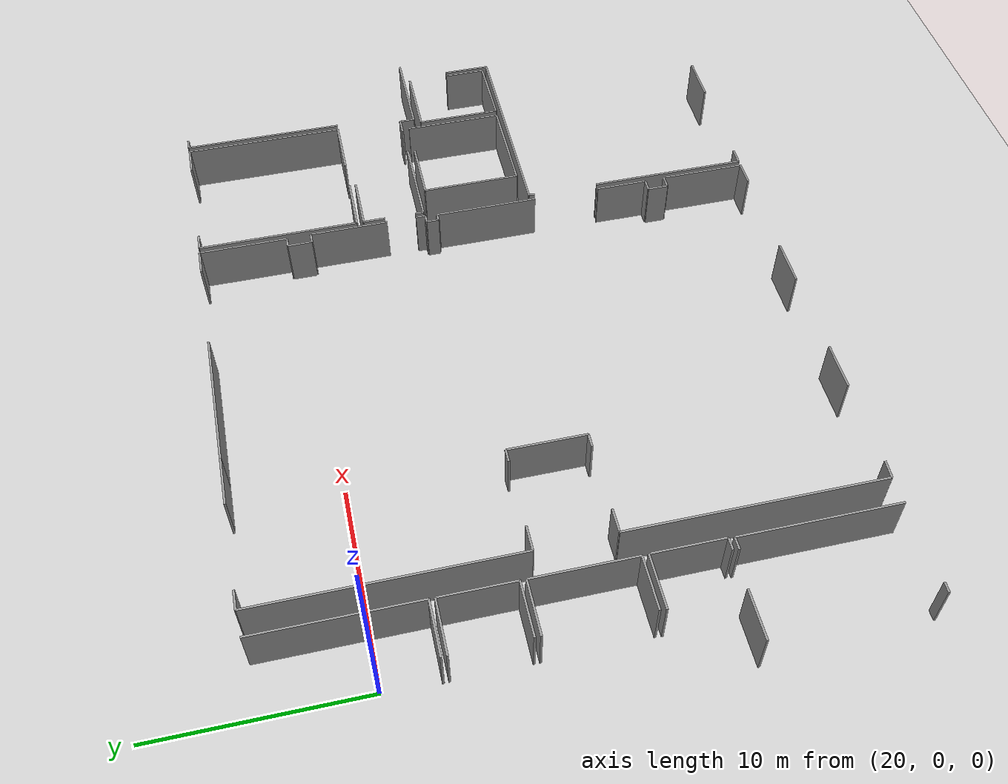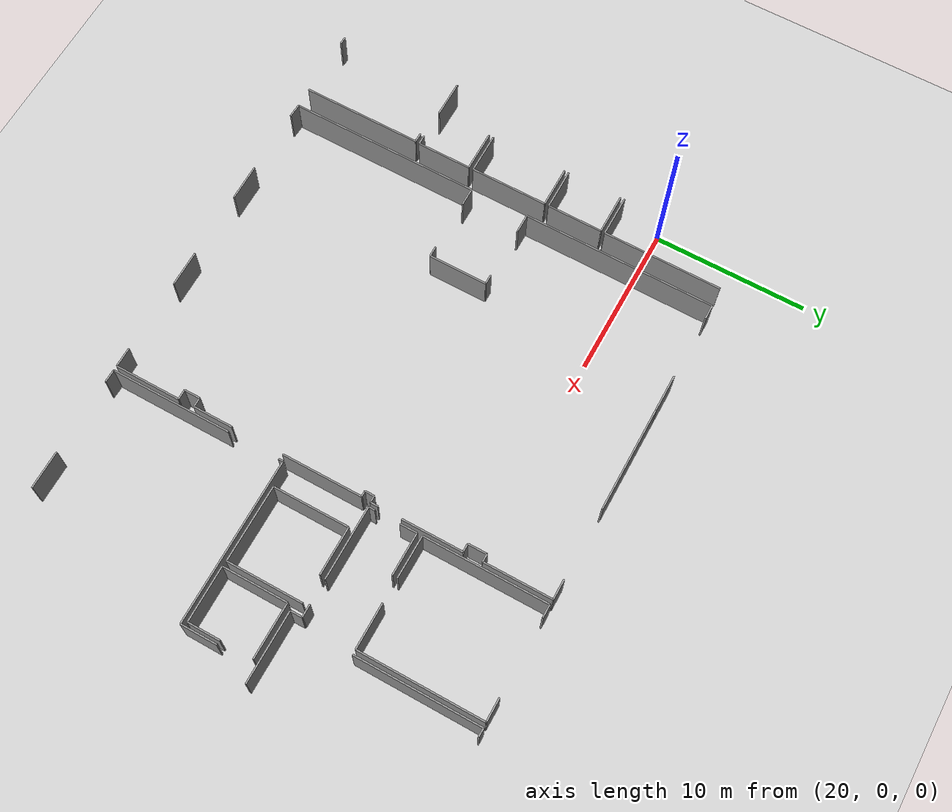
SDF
<sdf version="1.6">
 <world name="default">
  <model name="ground_plane">
   <static>1</static>
   <link name="link">
    <collision name="collision">
     <geometry><plane><normal>0 0 1</normal><size>100 100</size></plane></geometry>
     <surface><friction><ode><mu>100</mu><mu2>50</mu2></ode></friction></surface>
    </collision>
    <visual name="visual">
     <cast_shadows>0</cast_shadows>
     <geometry><plane><normal>0 0 1</normal><size>100 100</size></plane></geometry>
     <material>
      <script><uri>file://media/materials/scripts/gazebo.material</uri><name>Gazebo/Grey</name></script>
     </material>
    </visual>
   </link>
  </model>
  <model name="0510035343_A_40_1_102">
   <static>1</static>
   <link name="Wall_283">
    <collision name="Wall_283_Collision">
     <geometry><box><size>2.66590497953 0.1 2.5</size></box></geometry>
     <pose>1.33295248976 0 1.25 0 0 0</pose>
    </collision>
    <visual name="Wall_283_Visual">
     <pose>1.33295248976 0 1.25 0 0 0</pose>
     <geometry><box><size>2.66590497953 0.1 2.5</size></box></geometry>
     <material>
      <script><uri>file://media/materials/scripts/gazebo.material</uri><name>Gazebo/Grey</name></script>
      <ambient>1 1 1 1</ambient>
     </material>
    </visual>
    <pose>136.652004189 -27.2219365895 0 0 0 0.0</pose>
   </link>
   <link name="Wall_284">
    <collision name="Wall_284_Collision">
     <geometry><box><size>3.59871782665 0.1 2.5</size></box></geometry>
     <pose>1.79935891333 0 1.25 0 0 0</pose>
    </collision>
    <visual name="Wall_284_Visual">
     <pose>1.79935891333 0 1.25 0 0 0</pose>
     <geometry><box><size>3.59871782665 0.1 2.5</size></box></geometry>
     <material>
      <script><uri>file://media/materials/scripts/gazebo.material</uri><name>Gazebo/Grey</name></script>
      <ambient>1 1 1 1</ambient>
     </material>
    </visual>
    <pose>139.317909169 -27.2219365895 0 0 0 -1.57079632679</pose>
   </link>
   <link name="Wall_285">
    <collision name="Wall_285_Collision">
     <geometry><box><size>2.67479132946 0.1 2.5</size></box></geometry>
     <pose>1.33739566473 0 1.25 0 0 0</pose>
    </collision>
    <visual name="Wall_285_Visual">
     <pose>1.33739566473 0 1.25 0 0 0</pose>
     <geometry><box><size>2.67479132946 0.1 2.5</size></box></geometry>
     <material>
      <script><uri>file://media/materials/scripts/gazebo.material</uri><name>Gazebo/Grey</name></script>
      <ambient>1 1 1 1</ambient>
     </material>
    </visual>
    <pose>139.317909169 -30.8206544162 0 0 0 3.14159265359</pose>
   </link>
   <link name="Wall_289">
    <collision name="Wall_289_Collision">
     <geometry><box><size>2.6714906852 0.1 2.5</size></box></geometry>
     <pose>1.3357453426 0 1.25 0 0 0</pose>
    </collision>
    <visual name="Wall_289_Visual">
     <pose>1.3357453426 0 1.25 0 0 0</pose>
     <geometry><box><size>2.6714906852 0.1 2.5</size></box></geometry>
     <material>
      <script><uri>file://media/materials/scripts/gazebo.material</uri><name>Gazebo/Grey</name></script>
      <ambient>1 1 1 1</ambient>
     </material>
    </visual>
    <pose>136.665206766 -36.4284490146 0 0 0 0.0</pose>
   </link>
   <link name="Wall_290">
    <collision name="Wall_290_Collision">
     <geometry><box><size>3.53905233425 0.1 2.5</size></box></geometry>
     <pose>1.76952616713 0 1.25 0 0 0</pose>
    </collision>
    <visual name="Wall_290_Visual">
     <pose>1.76952616713 0 1.25 0 0 0</pose>
     <geometry><box><size>3.53905233425 0.1 2.5</size></box></geometry>
     <material>
      <script><uri>file://media/materials/scripts/gazebo.material</uri><name>Gazebo/Grey</name></script>
      <ambient>1 1 1 1</ambient>
     </material>
    </visual>
    <pose>139.336697452 -36.4284490146 0 0 0 -1.57079632679</pose>
   </link>
   <link name="Wall_291">
    <collision name="Wall_291_Collision">
     <geometry><box><size>0.618743850963 0.1 2.5</size></box></geometry>
     <pose>0.309371925482 0 1.25 0 0 0</pose>
    </collision>
    <visual name="Wall_291_Visual">
     <pose>0.309371925482 0 1.25 0 0 0</pose>
     <geometry><box><size>0.618743850963 0.1 2.5</size></box></geometry>
     <material>
      <script><uri>file://media/materials/scripts/gazebo.material</uri><name>Gazebo/Grey</name></script>
      <ambient>1 1 1 1</ambient>
     </material>
    </visual>
    <pose>139.336697452 -39.9675013488 0 0 0 3.14159265359</pose>
   </link>
   <link name="Wall_292">
    <collision name="Wall_292_Collision">
     <geometry><box><size>2.399822273 0.1 2.5</size></box></geometry>
     <pose>1.1999111365 0 1.25 0 0 0</pose>
    </collision>
    <visual name="Wall_292_Visual">
     <pose>1.1999111365 0 1.25 0 0 0</pose>
     <geometry><box><size>2.399822273 0.1 2.5</size></box></geometry>
     <material>
      <script><uri>file://media/materials/scripts/gazebo.material</uri><name>Gazebo/Grey</name></script>
      <ambient>1 1 1 1</ambient>
     </material>
    </visual>
    <pose>136.818813672 -39.9675013488 0 0 0 3.14159265359</pose>
   </link>
   <link name="Wall_339">
    <collision name="Wall_339_Collision">
     <geometry><box><size>7.76438477895 0.1 2.5</size></box></geometry>
     <pose>3.88219238948 0 1.25 0 0 0</pose>
    </collision>
    <visual name="Wall_339_Visual">
     <pose>3.88219238948 0 1.25 0 0 0</pose>
     <geometry><box><size>7.76438477895 0.1 2.5</size></box></geometry>
     <material>
      <script><uri>file://media/materials/scripts/gazebo.material</uri><name>Gazebo/Grey</name></script>
      <ambient>1 1 1 1</ambient>
     </material>
    </visual>
    <pose>139.320702022 -19.1881684598 0 0 0 -1.57079632679</pose>
   </link>
   <link name="Wall_340">
    <collision name="Wall_340_Collision">
     <geometry><box><size>2.6755530166 0.1 2.5</size></box></geometry>
     <pose>1.3377765083 0 1.25 0 0 0</pose>
    </collision>
    <visual name="Wall_340_Visual">
     <pose>1.3377765083 0 1.25 0 0 0</pose>
     <geometry><box><size>2.6755530166 0.1 2.5</size></box></geometry>
     <material>
      <script><uri>file://media/materials/scripts/gazebo.material</uri><name>Gazebo/Grey</name></script>
      <ambient>1 1 1 1</ambient>
     </material>
    </visual>
    <pose>139.320702022 -26.9525532388 0 0 0 3.14159265359</pose>
   </link>
   <link name="Wall_343">
    <collision name="Wall_343_Collision">
     <geometry><box><size>2.6714906852 0.1 2.5</size></box></geometry>
     <pose>1.3357453426 0 1.25 0 0 0</pose>
    </collision>
    <visual name="Wall_343_Visual">
     <pose>1.3357453426 0 1.25 0 0 0</pose>
     <geometry><box><size>2.6714906852 0.1 2.5</size></box></geometry>
     <material>
      <script><uri>file://media/materials/scripts/gazebo.material</uri><name>Gazebo/Grey</name></script>
      <ambient>1 1 1 1</ambient>
     </material>
    </visual>
    <pose>136.643117839 -31.1022247612 0 0 0 0.0</pose>
   </link>
   <link name="Wall_344">
    <collision name="Wall_344_Collision">
     <geometry><box><size>5.01723317147 0.1 2.5</size></box></geometry>
     <pose>2.50861658574 0 1.25 0 0 0</pose>
    </collision>
    <visual name="Wall_344_Visual">
     <pose>2.50861658574 0 1.25 0 0 0</pose>
     <geometry><box><size>5.01723317147 0.1 2.5</size></box></geometry>
     <material>
      <script><uri>file://media/materials/scripts/gazebo.material</uri><name>Gazebo/Grey</name></script>
      <ambient>1 1 1 1</ambient>
     </material>
    </visual>
    <pose>139.314608525 -31.1022247612 0 0 0 -1.57079632679</pose>
   </link>
   <link name="Wall_345">
    <collision name="Wall_345_Collision">
     <geometry><box><size>2.62731283125 0.1 2.5</size></box></geometry>
     <pose>1.31365641563 0 1.25 0 0 0</pose>
    </collision>
    <visual name="Wall_345_Visual">
     <pose>1.31365641563 0 1.25 0 0 0</pose>
     <geometry><box><size>2.62731283125 0.1 2.5</size></box></geometry>
     <material>
      <script><uri>file://media/materials/scripts/gazebo.material</uri><name>Gazebo/Grey</name></script>
      <ambient>1 1 1 1</ambient>
     </material>
    </visual>
    <pose>139.314608525 -36.1194579327 0 0 0 3.14159265359</pose>
   </link>
   <link name="Wall_349">
    <collision name="Wall_349_Collision">
     <geometry><box><size>0.609857501031 0.1 2.5</size></box></geometry>
     <pose>0.304928750516 0 1.25 0 0 0</pose>
    </collision>
    <visual name="Wall_349_Visual">
     <pose>0.304928750516 0 1.25 0 0 0</pose>
     <geometry><box><size>0.609857501031 0.1 2.5</size></box></geometry>
     <material>
      <script><uri>file://media/materials/scripts/gazebo.material</uri><name>Gazebo/Grey</name></script>
      <ambient>1 1 1 1</ambient>
     </material>
    </visual>
    <pose>138.688755594 -40.2434859881 0 0 0 0.0</pose>
   </link>
   <link name="Wall_350">
    <collision name="Wall_350_Collision">
     <geometry><box><size>7.82430416706 0.1 2.5</size></box></geometry>
     <pose>3.91215208353 0 1.25 0 0 0</pose>
    </collision>
    <visual name="Wall_350_Visual">
     <pose>3.91215208353 0 1.25 0 0 0</pose>
     <geometry><box><size>7.82430416706 0.1 2.5</size></box></geometry>
     <material>
      <script><uri>file://media/materials/scripts/gazebo.material</uri><name>Gazebo/Grey</name></script>
      <ambient>1 1 1 1</ambient>
     </material>
    </visual>
    <pose>139.298613095 -40.2434859881 0 0 0 -1.57079632679</pose>
   </link>
   <link name="Wall_351">
    <collision name="Wall_351_Collision">
     <geometry><box><size>0.493699674031 0.1 2.5</size></box></geometry>
     <pose>0.246849837016 0 1.25 0 0 0</pose>
    </collision>
    <visual name="Wall_351_Visual">
     <pose>0.246849837016 0 1.25 0 0 0</pose>
     <geometry><box><size>0.493699674031 0.1 2.5</size></box></geometry>
     <material>
      <script><uri>file://media/materials/scripts/gazebo.material</uri><name>Gazebo/Grey</name></script>
      <ambient>1 1 1 1</ambient>
     </material>
    </visual>
    <pose>135.291884858 -48.0677901552 0 0 0 3.11896277253</pose>
   </link>
   <link name="Wall_382">
    <collision name="Wall_382_Collision">
     <geometry><box><size>12.5038560411 0.1 2.5</size></box></geometry>
     <pose>6.25192802057 0 1.25 0 0 0</pose>
    </collision>
    <visual name="Wall_382_Visual">
     <pose>6.25192802057 0 1.25 0 0 0</pose>
     <geometry><box><size>12.5038560411 0.1 2.5</size></box></geometry>
     <material>
      <script><uri>file://media/materials/scripts/gazebo.material</uri><name>Gazebo/Grey</name></script>
      <ambient>1 1 1 1</ambient>
     </material>
    </visual>
    <pose>140.632581167 -48.0134564728 0 0 0 1.57079632679</pose>
   </link>
   <link name="Wall_383">
    <collision name="Wall_383_Collision">
     <geometry><box><size>1.18518518519 0.1 2.5</size></box></geometry>
     <pose>0.592592592593 0 1.25 0 0 0</pose>
    </collision>
    <visual name="Wall_383_Visual">
     <pose>0.592592592593 0 1.25 0 0 0</pose>
     <geometry><box><size>1.18518518519 0.1 2.5</size></box></geometry>
     <material>
      <script><uri>file://media/materials/scripts/gazebo.material</uri><name>Gazebo/Grey</name></script>
      <ambient>1 1 1 1</ambient>
     </material>
    </visual>
    <pose>140.632581167 -35.5096004316 0 0 0 0.0</pose>
   </link>
   <link name="Wall_384">
    <collision name="Wall_384_Collision">
     <geometry><box><size>0.684502840458 0.1 2.5</size></box></geometry>
     <pose>0.342251420229 0 1.25 0 0 0</pose>
    </collision>
    <visual name="Wall_384_Visual">
     <pose>0.342251420229 0 1.25 0 0 0</pose>
     <geometry><box><size>0.684502840458 0.1 2.5</size></box></geometry>
     <material>
      <script><uri>file://media/materials/scripts/gazebo.material</uri><name>Gazebo/Grey</name></script>
      <ambient>1 1 1 1</ambient>
     </material>
    </visual>
    <pose>145.190009204 -35.5096004316 0 0 0 0.0</pose>
   </link>
   <link name="Wall_385">
    <collision name="Wall_385_Collision">
     <geometry><box><size>3.83966485766 0.1 2.5</size></box></geometry>
     <pose>1.91983242883 0 1.25 0 0 0</pose>
    </collision>
    <visual name="Wall_385_Visual">
     <pose>1.91983242883 0 1.25 0 0 0</pose>
     <geometry><box><size>3.83966485766 0.1 2.5</size></box></geometry>
     <material>
      <script><uri>file://media/materials/scripts/gazebo.material</uri><name>Gazebo/Grey</name></script>
      <ambient>1 1 1 1</ambient>
     </material>
    </visual>
    <pose>145.874512044 -35.5096004316 0 0 0 1.57079632679</pose>
   </link>
   <link name="Wall_386">
    <collision name="Wall_386_Collision">
     <geometry><box><size>0.634485385128 0.1 2.5</size></box></geometry>
     <pose>0.317242692564 0 1.25 0 0 0</pose>
    </collision>
    <visual name="Wall_386_Visual">
     <pose>0.317242692564 0 1.25 0 0 0</pose>
     <geometry><box><size>0.634485385128 0.1 2.5</size></box></geometry>
     <material>
      <script><uri>file://media/materials/scripts/gazebo.material</uri><name>Gazebo/Grey</name></script>
      <ambient>1 1 1 1</ambient>
     </material>
    </visual>
    <pose>145.874512044 -31.669935574 0 0 0 3.14159265359</pose>
   </link>
   <link name="Wall_387">
    <collision name="Wall_387_Collision">
     <geometry><box><size>1.25195975753 0.1 2.5</size></box></geometry>
     <pose>0.625979878765 0 1.25 0 0 0</pose>
    </collision>
    <visual name="Wall_387_Visual">
     <pose>0.625979878765 0 1.25 0 0 0</pose>
     <geometry><box><size>1.25195975753 0.1 2.5</size></box></geometry>
     <material>
      <script><uri>file://media/materials/scripts/gazebo.material</uri><name>Gazebo/Grey</name></script>
      <ambient>1 1 1 1</ambient>
     </material>
    </visual>
    <pose>141.834523469 -31.669935574 0 0 0 3.14159265359</pose>
   </link>
   <link name="Wall_388">
    <collision name="Wall_388_Collision">
     <geometry><box><size>12.5538734965 0.1 2.5</size></box></geometry>
     <pose>6.27693674823 0 1.25 0 0 0</pose>
    </collision>
    <visual name="Wall_388_Visual">
     <pose>6.27693674823 0 1.25 0 0 0</pose>
     <geometry><box><size>12.5538734965 0.1 2.5</size></box></geometry>
     <material>
      <script><uri>file://media/materials/scripts/gazebo.material</uri><name>Gazebo/Grey</name></script>
      <ambient>1 1 1 1</ambient>
     </material>
    </visual>
    <pose>140.582563712 -31.669935574 0 0 0 1.57079632679</pose>
   </link>
   <link name="Wall_389">
    <collision name="Wall_389_Collision">
     <geometry><box><size>0.951601129836 0.1 2.5</size></box></geometry>
     <pose>0.475800564918 0 1.25 0 0 0</pose>
    </collision>
    <visual name="Wall_389_Visual">
     <pose>0.475800564918 0 1.25 0 0 0</pose>
     <geometry><box><size>0.951601129836 0.1 2.5</size></box></geometry>
     <material>
      <script><uri>file://media/materials/scripts/gazebo.material</uri><name>Gazebo/Grey</name></script>
      <ambient>1 1 1 1</ambient>
     </material>
    </visual>
    <pose>140.582563712 -19.1160620775 0 0 0 0.0</pose>
   </link>
   <link name="Wall_390">
    <collision name="Wall_390_Collision">
     <geometry><box><size>2.45415595544 0.1 2.5</size></box></geometry>
     <pose>1.22707797772 0 1.25 0 0 0</pose>
    </collision>
    <visual name="Wall_390_Visual">
     <pose>1.22707797772 0 1.25 0 0 0</pose>
     <geometry><box><size>2.45415595544 0.1 2.5</size></box></geometry>
     <material>
      <script><uri>file://media/materials/scripts/gazebo.material</uri><name>Gazebo/Grey</name></script>
      <ambient>1 1 1 1</ambient>
     </material>
    </visual>
    <pose>145.807737472 -19.1160620775 0 0 0 0.0</pose>
   </link>
   <link name="Wall_391">
    <collision name="Wall_391_Collision">
     <geometry><box><size>6.89123742423 0.1 2.5</size></box></geometry>
     <pose>3.44561871211 0 1.25 0 0 0</pose>
    </collision>
    <visual name="Wall_391_Visual">
     <pose>3.44561871211 0 1.25 0 0 0</pose>
     <geometry><box><size>6.89123742423 0.1 2.5</size></box></geometry>
     <material>
      <script><uri>file://media/materials/scripts/gazebo.material</uri><name>Gazebo/Grey</name></script>
      <ambient>1 1 1 1</ambient>
     </material>
    </visual>
    <pose>148.261893427 -19.1160620775 0 0 0 0.0</pose>
   </link>
   <link name="Wall_392">
    <collision name="Wall_392_Collision">
     <geometry><box><size>1.30527785712 0.1 2.5</size></box></geometry>
     <pose>0.65263892856 0 1.25 0 0 0</pose>
    </collision>
    <visual name="Wall_392_Visual">
     <pose>0.65263892856 0 1.25 0 0 0</pose>
     <geometry><box><size>1.30527785712 0.1 2.5</size></box></geometry>
     <material>
      <script><uri>file://media/materials/scripts/gazebo.material</uri><name>Gazebo/Grey</name></script>
      <ambient>1 1 1 1</ambient>
     </material>
    </visual>
    <pose>159.837506744 -19.1160620775 0 0 0 0.0</pose>
   </link>
   <link name="Wall_393">
    <collision name="Wall_393_Collision">
     <geometry><box><size>4.44038211305 0.1 2.5</size></box></geometry>
     <pose>2.22019105652 0 1.25 0 0 0</pose>
    </collision>
    <visual name="Wall_393_Visual">
     <pose>2.22019105652 0 1.25 0 0 0</pose>
     <geometry><box><size>4.44038211305 0.1 2.5</size></box></geometry>
     <material>
      <script><uri>file://media/materials/scripts/gazebo.material</uri><name>Gazebo/Grey</name></script>
      <ambient>1 1 1 1</ambient>
     </material>
    </visual>
    <pose>161.142784601 -19.1160620775 0 0 0 -1.57079632679</pose>
   </link>
   <link name="Wall_394">
    <collision name="Wall_394_Collision">
     <geometry><box><size>0.51083817322 0.1 2.5</size></box></geometry>
     <pose>0.25541908661 0 1.25 0 0 0</pose>
    </collision>
    <visual name="Wall_394_Visual">
     <pose>0.25541908661 0 1.25 0 0 0</pose>
     <geometry><box><size>0.51083817322 0.1 2.5</size></box></geometry>
     <material>
      <script><uri>file://media/materials/scripts/gazebo.material</uri><name>Gazebo/Grey</name></script>
      <ambient>1 1 1 1</ambient>
     </material>
    </visual>
    <pose>161.142784601 -23.5564441905 0 0 0 3.14159265359</pose>
   </link>
   <link name="Wall_395">
    <collision name="Wall_395_Collision">
     <geometry><box><size>1.23545653623 0.1 2.5</size></box></geometry>
     <pose>0.617728268114 0 1.25 0 0 0</pose>
    </collision>
    <visual name="Wall_395_Visual">
     <pose>0.617728268114 0 1.25 0 0 0</pose>
     <geometry><box><size>1.23545653623 0.1 2.5</size></box></geometry>
     <material>
      <script><uri>file://media/materials/scripts/gazebo.material</uri><name>Gazebo/Grey</name></script>
      <ambient>1 1 1 1</ambient>
     </material>
    </visual>
    <pose>160.631946428 -23.5564441905 0 0 0 -1.57079632679</pose>
   </link>
   <link name="Wall_396">
    <collision name="Wall_396_Collision">
     <geometry><box><size>0.550953695769 0.1 2.5</size></box></geometry>
     <pose>0.275476847885 0 1.25 0 0 0</pose>
    </collision>
    <visual name="Wall_396_Visual">
     <pose>0.275476847885 0 1.25 0 0 0</pose>
     <geometry><box><size>0.550953695769 0.1 2.5</size></box></geometry>
     <material>
      <script><uri>file://media/materials/scripts/gazebo.material</uri><name>Gazebo/Grey</name></script>
      <ambient>1 1 1 1</ambient>
     </material>
    </visual>
    <pose>160.631946428 -24.7919007268 0 0 0 0.0</pose>
   </link>
   <link name="Wall_397">
    <collision name="Wall_397_Collision">
     <geometry><box><size>3.97549906376 0.1 2.5</size></box></geometry>
     <pose>1.98774953188 0 1.25 0 0 0</pose>
    </collision>
    <visual name="Wall_397_Visual">
     <pose>1.98774953188 0 1.25 0 0 0</pose>
     <geometry><box><size>3.97549906376 0.1 2.5</size></box></geometry>
     <material>
      <script><uri>file://media/materials/scripts/gazebo.material</uri><name>Gazebo/Grey</name></script>
      <ambient>1 1 1 1</ambient>
     </material>
    </visual>
    <pose>161.182900124 -24.7919007268 0 0 0 -1.57079632679</pose>
   </link>
   <link name="Wall_398">
    <collision name="Wall_398_Collision">
     <geometry><box><size>0.496366117617 0.1 2.5</size></box></geometry>
     <pose>0.248183058809 0 1.25 0 0 0</pose>
    </collision>
    <visual name="Wall_398_Visual">
     <pose>0.248183058809 0 1.25 0 0 0</pose>
     <geometry><box><size>0.496366117617 0.1 2.5</size></box></geometry>
     <material>
      <script><uri>file://media/materials/scripts/gazebo.material</uri><name>Gazebo/Grey</name></script>
      <ambient>1 1 1 1</ambient>
     </material>
    </visual>
    <pose>161.182900124 -30.2938208131 0 0 0 -1.57079632679</pose>
   </link>
   <link name="Wall_399">
    <collision name="Wall_399_Collision">
     <geometry><box><size>0.428575962423 0.1 2.5</size></box></geometry>
     <pose>0.214287981212 0 1.25 0 0 0</pose>
    </collision>
    <visual name="Wall_399_Visual">
     <pose>0.214287981212 0 1.25 0 0 0</pose>
     <geometry><box><size>0.428575962423 0.1 2.5</size></box></geometry>
     <material>
      <script><uri>file://media/materials/scripts/gazebo.material</uri><name>Gazebo/Grey</name></script>
      <ambient>1 1 1 1</ambient>
     </material>
    </visual>
    <pose>161.182900124 -30.7901869307 0 0 0 3.14159265359</pose>
   </link>
   <link name="Wall_400">
    <collision name="Wall_400_Collision">
     <geometry><box><size>0.613158145292 0.1 2.5</size></box></geometry>
     <pose>0.306579072646 0 1.25 0 0 0</pose>
    </collision>
    <visual name="Wall_400_Visual">
     <pose>0.306579072646 0 1.25 0 0 0</pose>
     <geometry><box><size>0.613158145292 0.1 2.5</size></box></geometry>
     <material>
      <script><uri>file://media/materials/scripts/gazebo.material</uri><name>Gazebo/Grey</name></script>
      <ambient>1 1 1 1</ambient>
     </material>
    </visual>
    <pose>160.754324161 -30.7901869307 0 0 0 -1.57079632679</pose>
   </link>
   <link name="Wall_401">
    <collision name="Wall_401_Collision">
     <geometry><box><size>0.379574089943 0.1 2.5</size></box></geometry>
     <pose>0.189787044971 0 1.25 0 0 0</pose>
    </collision>
    <visual name="Wall_401_Visual">
     <pose>0.189787044971 0 1.25 0 0 0</pose>
     <geometry><box><size>0.379574089943 0.1 2.5</size></box></geometry>
     <material>
      <script><uri>file://media/materials/scripts/gazebo.material</uri><name>Gazebo/Grey</name></script>
      <ambient>1 1 1 1</ambient>
     </material>
    </visual>
    <pose>160.754324161 -31.403345076 0 0 0 0.0</pose>
   </link>
   <link name="Wall_402">
    <collision name="Wall_402_Collision">
     <geometry><box><size>5.24599320829 0.1 2.5</size></box></geometry>
     <pose>2.62299660414 0 1.25 0 0 0</pose>
    </collision>
    <visual name="Wall_402_Visual">
     <pose>2.62299660414 0 1.25 0 0 0</pose>
     <geometry><box><size>5.24599320829 0.1 2.5</size></box></geometry>
     <material>
      <script><uri>file://media/materials/scripts/gazebo.material</uri><name>Gazebo/Grey</name></script>
      <ambient>1 1 1 1</ambient>
     </material>
    </visual>
    <pose>161.133898251 -31.403345076 0 0 0 -1.57079632679</pose>
   </link>
   <link name="Wall_403">
    <collision name="Wall_403_Collision">
     <geometry><box><size>2.61512583706 0.1 2.5</size></box></geometry>
     <pose>1.30756291853 0 1.25 0 0 0</pose>
    </collision>
    <visual name="Wall_403_Visual">
     <pose>1.30756291853 0 1.25 0 0 0</pose>
     <geometry><box><size>2.61512583706 0.1 2.5</size></box></geometry>
     <material>
      <script><uri>file://media/materials/scripts/gazebo.material</uri><name>Gazebo/Grey</name></script>
      <ambient>1 1 1 1</ambient>
     </material>
    </visual>
    <pose>161.133898251 -40.0878479165 0 0 0 -1.57079632679</pose>
   </link>
   <link name="Wall_404">
    <collision name="Wall_404_Collision">
     <geometry><box><size>0.615697102415 0.1 2.5</size></box></geometry>
     <pose>0.307848551208 0 1.25 0 0 0</pose>
    </collision>
    <visual name="Wall_404_Visual">
     <pose>0.307848551208 0 1.25 0 0 0</pose>
     <geometry><box><size>0.615697102415 0.1 2.5</size></box></geometry>
     <material>
      <script><uri>file://media/materials/scripts/gazebo.material</uri><name>Gazebo/Grey</name></script>
      <ambient>1 1 1 1</ambient>
     </material>
    </visual>
    <pose>161.133898251 -42.7029737535 0 0 0 3.14159265359</pose>
   </link>
   <link name="Wall_405">
    <collision name="Wall_405_Collision">
     <geometry><box><size>1.04097242058 0.1 2.5</size></box></geometry>
     <pose>0.520486210289 0 1.25 0 0 0</pose>
    </collision>
    <visual name="Wall_405_Visual">
     <pose>0.520486210289 0 1.25 0 0 0</pose>
     <geometry><box><size>1.04097242058 0.1 2.5</size></box></geometry>
     <material>
      <script><uri>file://media/materials/scripts/gazebo.material</uri><name>Gazebo/Grey</name></script>
      <ambient>1 1 1 1</ambient>
     </material>
    </visual>
    <pose>160.518201149 -42.7029737535 0 0 0 -1.57079632679</pose>
   </link>
   <link name="Wall_406">
    <collision name="Wall_406_Collision">
     <geometry><box><size>0.660128852074 0.1 2.5</size></box></geometry>
     <pose>0.330064426037 0 1.25 0 0 0</pose>
    </collision>
    <visual name="Wall_406_Visual">
     <pose>0.330064426037 0 1.25 0 0 0</pose>
     <geometry><box><size>0.660128852074 0.1 2.5</size></box></geometry>
     <material>
      <script><uri>file://media/materials/scripts/gazebo.material</uri><name>Gazebo/Grey</name></script>
      <ambient>1 1 1 1</ambient>
     </material>
    </visual>
    <pose>160.518201149 -43.7439461741 0 0 0 0.0</pose>
   </link>
   <link name="Wall_407">
    <collision name="Wall_407_Collision">
     <geometry><box><size>4.31952775398 0.1 2.5</size></box></geometry>
     <pose>2.15976387699 0 1.25 0 0 0</pose>
    </collision>
    <visual name="Wall_407_Visual">
     <pose>2.15976387699 0 1.25 0 0 0</pose>
     <geometry><box><size>4.31952775398 0.1 2.5</size></box></geometry>
     <material>
      <script><uri>file://media/materials/scripts/gazebo.material</uri><name>Gazebo/Grey</name></script>
      <ambient>1 1 1 1</ambient>
     </material>
    </visual>
    <pose>161.178330001 -43.7439461741 0 0 0 -1.57079632679</pose>
   </link>
   <link name="Wall_408">
    <collision name="Wall_408_Collision">
     <geometry><box><size>1.28090386874 0.1 2.5</size></box></geometry>
     <pose>0.640451934368 0 1.25 0 0 0</pose>
    </collision>
    <visual name="Wall_408_Visual">
     <pose>0.640451934368 0 1.25 0 0 0</pose>
     <geometry><box><size>1.28090386874 0.1 2.5</size></box></geometry>
     <material>
      <script><uri>file://media/materials/scripts/gazebo.material</uri><name>Gazebo/Grey</name></script>
      <ambient>1 1 1 1</ambient>
     </material>
    </visual>
    <pose>161.178330001 -48.0634739281 0 0 0 3.14159265359</pose>
   </link>
   <link name="Wall_409">
    <collision name="Wall_409_Collision">
     <geometry><box><size>2.37037037037 0.1 2.5</size></box></geometry>
     <pose>1.18518518519 0 1.25 0 0 0</pose>
    </collision>
    <visual name="Wall_409_Visual">
     <pose>1.18518518519 0 1.25 0 0 0</pose>
     <geometry><box><size>2.37037037037 0.1 2.5</size></box></geometry>
     <material>
      <script><uri>file://media/materials/scripts/gazebo.material</uri><name>Gazebo/Grey</name></script>
      <ambient>1 1 1 1</ambient>
     </material>
    </visual>
    <pose>155.056142689 -48.0634739281 0 0 0 3.14159265359</pose>
   </link>
   <link name="Wall_410">
    <collision name="Wall_410_Collision">
     <geometry><box><size>2.4038846044 0.1 2.5</size></box></geometry>
     <pose>1.2019423022 0 1.25 0 0 0</pose>
    </collision>
    <visual name="Wall_410_Visual">
     <pose>1.2019423022 0 1.25 0 0 0</pose>
     <geometry><box><size>2.4038846044 0.1 2.5</size></box></geometry>
     <material>
      <script><uri>file://media/materials/scripts/gazebo.material</uri><name>Gazebo/Grey</name></script>
      <ambient>1 1 1 1</ambient>
     </material>
    </visual>
    <pose>148.24513631 -48.0634739281 0 0 0 3.14159265359</pose>
   </link>
   <link name="Wall_411">
    <collision name="Wall_411_Collision">
     <geometry><box><size>0.886239122743 0.1 2.5</size></box></geometry>
     <pose>0.443119561371 0 1.25 0 0 0</pose>
    </collision>
    <visual name="Wall_411_Visual">
     <pose>0.443119561371 0 1.25 0 0 0</pose>
     <geometry><box><size>0.886239122743 0.1 2.5</size></box></geometry>
     <material>
      <script><uri>file://media/materials/scripts/gazebo.material</uri><name>Gazebo/Grey</name></script>
      <ambient>1 1 1 1</ambient>
     </material>
    </visual>
    <pose>141.517407725 -48.0634739281 0 0 0 3.08512477143</pose>
   </link>
   <link name="Wall_477">
    <collision name="Wall_477_Collision">
     <geometry><box><size>7.96318512171 0.1 2.5</size></box></geometry>
     <pose>3.98159256086 0 1.25 0 0 0</pose>
    </collision>
    <visual name="Wall_477_Visual">
     <pose>3.98159256086 0 1.25 0 0 0</pose>
     <geometry><box><size>7.96318512171 0.1 2.5</size></box></geometry>
     <material>
      <script><uri>file://media/materials/scripts/gazebo.material</uri><name>Gazebo/Grey</name></script>
      <ambient>1 1 1 1</ambient>
     </material>
    </visual>
    <pose>161.483512647 -48.0634739281 0 0 0 1.57079632679</pose>
   </link>
   <link name="Wall_478">
    <collision name="Wall_478_Collision">
     <geometry><box><size>0.308991081913 0.1 2.5</size></box></geometry>
     <pose>0.154495540957 0 1.25 0 0 0</pose>
    </collision>
    <visual name="Wall_478_Visual">
     <pose>0.154495540957 0 1.25 0 0 0</pose>
     <geometry><box><size>0.308991081913 0.1 2.5</size></box></geometry>
     <material>
      <script><uri>file://media/materials/scripts/gazebo.material</uri><name>Gazebo/Grey</name></script>
      <ambient>1 1 1 1</ambient>
     </material>
    </visual>
    <pose>161.483512647 -36.7153511695 0 0 0 1.57079632679</pose>
   </link>
   <link name="Wall_479">
    <collision name="Wall_479_Collision">
     <geometry><box><size>10.8375384811 0.1 2.5</size></box></geometry>
     <pose>5.41876924053 0 1.25 0 0 0</pose>
    </collision>
    <visual name="Wall_479_Visual">
     <pose>5.41876924053 0 1.25 0 0 0</pose>
     <geometry><box><size>10.8375384811 0.1 2.5</size></box></geometry>
     <material>
      <script><uri>file://media/materials/scripts/gazebo.material</uri><name>Gazebo/Grey</name></script>
      <ambient>1 1 1 1</ambient>
     </material>
    </visual>
    <pose>161.483512647 -36.4063600876 0 0 0 0.0</pose>
   </link>
   <link name="Wall_480">
    <collision name="Wall_480_Collision">
     <geometry><box><size>2.38433463455 0.1 2.5</size></box></geometry>
     <pose>1.19216731727 0 1.25 0 0 0</pose>
    </collision>
    <visual name="Wall_480_Visual">
     <pose>1.19216731727 0 1.25 0 0 0</pose>
     <geometry><box><size>2.38433463455 0.1 2.5</size></box></geometry>
     <material>
      <script><uri>file://media/materials/scripts/gazebo.material</uri><name>Gazebo/Grey</name></script>
      <ambient>1 1 1 1</ambient>
     </material>
    </visual>
    <pose>172.321051128 -36.4063600876 0 0 0 1.57079632679</pose>
   </link>
   <link name="Wall_487">
    <collision name="Wall_487_Collision">
     <geometry><box><size>2.47065917674 0.1 2.5</size></box></geometry>
     <pose>1.23532958837 0 1.25 0 0 0</pose>
    </collision>
    <visual name="Wall_487_Visual">
     <pose>1.23532958837 0 1.25 0 0 0</pose>
     <geometry><box><size>2.47065917674 0.1 2.5</size></box></geometry>
     <material>
      <script><uri>file://media/materials/scripts/gazebo.material</uri><name>Gazebo/Grey</name></script>
      <ambient>1 1 1 1</ambient>
     </material>
    </visual>
    <pose>169.813830969 -48.0802310451 0 0 0 3.14159265359</pose>
   </link>
   <link name="Wall_488">
    <collision name="Wall_488_Collision">
     <geometry><box><size>0.851477229907 0.1 2.5</size></box></geometry>
     <pose>0.425738614954 0 1.25 0 0 0</pose>
    </collision>
    <visual name="Wall_488_Visual">
     <pose>0.425738614954 0 1.25 0 0 0</pose>
     <geometry><box><size>0.851477229907 0.1 2.5</size></box></geometry>
     <material>
      <script><uri>file://media/materials/scripts/gazebo.material</uri><name>Gazebo/Grey</name></script>
      <ambient>1 1 1 1</ambient>
     </material>
    </visual>
    <pose>162.334824971 -48.0802310451 0 0 0 3.12191133</pose>
   </link>
   <link name="Wall_489">
    <collision name="Wall_489_Collision">
     <geometry><box><size>4.8489003142 0.1 2.5</size></box></geometry>
     <pose>2.4244501571 0 1.25 0 0 0</pose>
    </collision>
    <visual name="Wall_489_Visual">
     <pose>2.4244501571 0 1.25 0 0 0</pose>
     <geometry><box><size>4.8489003142 0.1 2.5</size></box></geometry>
     <material>
      <script><uri>file://media/materials/scripts/gazebo.material</uri><name>Gazebo/Grey</name></script>
      <ambient>1 1 1 1</ambient>
     </material>
    </visual>
    <pose>161.458123076 -30.7416928497 0 0 0 0.0</pose>
   </link>
   <link name="Wall_490">
    <collision name="Wall_490_Collision">
     <geometry><box><size>0.825668856517 0.1 2.5</size></box></geometry>
     <pose>0.412834428259 0 1.25 0 0 0</pose>
    </collision>
    <visual name="Wall_490_Visual">
     <pose>0.412834428259 0 1.25 0 0 0</pose>
     <geometry><box><size>0.825668856517 0.1 2.5</size></box></geometry>
     <material>
      <script><uri>file://media/materials/scripts/gazebo.material</uri><name>Gazebo/Grey</name></script>
      <ambient>1 1 1 1</ambient>
     </material>
    </visual>
    <pose>167.919768955 -30.7416928497 0 0 0 0.0</pose>
   </link>
   <link name="Wall_491">
    <collision name="Wall_491_Collision">
     <geometry><box><size>0.766257259831 0.1 2.5</size></box></geometry>
     <pose>0.383128629915 0 1.25 0 0 0</pose>
    </collision>
    <visual name="Wall_491_Visual">
     <pose>0.383128629915 0 1.25 0 0 0</pose>
     <geometry><box><size>0.766257259831 0.1 2.5</size></box></geometry>
     <material>
      <script><uri>file://media/materials/scripts/gazebo.material</uri><name>Gazebo/Grey</name></script>
      <ambient>1 1 1 1</ambient>
     </material>
    </visual>
    <pose>168.745437811 -30.7416928497 0 0 0 -1.57079632679</pose>
   </link>
   <link name="Wall_492">
    <collision name="Wall_492_Collision">
     <geometry><box><size>4.64578374433 0.1 2.5</size></box></geometry>
     <pose>2.32289187216 0 1.25 0 0 0</pose>
    </collision>
    <visual name="Wall_492_Visual">
     <pose>2.32289187216 0 1.25 0 0 0</pose>
     <geometry><box><size>4.64578374433 0.1 2.5</size></box></geometry>
     <material>
      <script><uri>file://media/materials/scripts/gazebo.material</uri><name>Gazebo/Grey</name></script>
      <ambient>1 1 1 1</ambient>
     </material>
    </visual>
    <pose>168.745437811 -31.5079501095 0 0 0 0.0</pose>
   </link>
   <link name="Wall_513">
    <collision name="Wall_513_Collision">
     <geometry><box><size>2.8319527754 0.1 2.5</size></box></geometry>
     <pose>1.4159763877 0 1.25 0 0 0</pose>
    </collision>
    <visual name="Wall_513_Visual">
     <pose>1.4159763877 0 1.25 0 0 0</pose>
     <geometry><box><size>2.8319527754 0.1 2.5</size></box></geometry>
     <material>
      <script><uri>file://media/materials/scripts/gazebo.material</uri><name>Gazebo/Grey</name></script>
      <ambient>1 1 1 1</ambient>
     </material>
    </visual>
    <pose>164.303532324 -27.5850074582 0 0 0 3.14159265359</pose>
   </link>
   <link name="Wall_514">
    <collision name="Wall_514_Collision">
     <geometry><box><size>1.11993398711 0.1 2.5</size></box></geometry>
     <pose>0.559966993557 0 1.25 0 0 0</pose>
    </collision>
    <visual name="Wall_514_Visual">
     <pose>0.559966993557 0 1.25 0 0 0</pose>
     <geometry><box><size>1.11993398711 0.1 2.5</size></box></geometry>
     <material>
      <script><uri>file://media/materials/scripts/gazebo.material</uri><name>Gazebo/Grey</name></script>
      <ambient>1 1 1 1</ambient>
     </material>
    </visual>
    <pose>161.471579549 -27.5850074582 0 0 0 -1.57079632679</pose>
   </link>
   <link name="Wall_515">
    <collision name="Wall_515_Collision">
     <geometry><box><size>0.42777208282 0.1 2.5</size></box></geometry>
     <pose>0.21388604141 0 1.25 0 0 0</pose>
    </collision>
    <visual name="Wall_515_Visual">
     <pose>0.21388604141 0 1.25 0 0 0</pose>
     <geometry><box><size>0.42777208282 0.1 2.5</size></box></geometry>
     <material>
      <script><uri>file://media/materials/scripts/gazebo.material</uri><name>Gazebo/Grey</name></script>
      <ambient>1 1 1 1</ambient>
     </material>
    </visual>
    <pose>161.471579549 -30.3141324701 0 0 0 -1.60225862551</pose>
   </link>
   <link name="Wall_516">
    <collision name="Wall_516_Collision">
     <geometry><box><size>4.26798692437 0.1 2.5</size></box></geometry>
     <pose>2.13399346219 0 1.25 0 0 0</pose>
    </collision>
    <visual name="Wall_516_Visual">
     <pose>2.13399346219 0 1.25 0 0 0</pose>
     <geometry><box><size>4.26798692437 0.1 2.5</size></box></geometry>
     <material>
      <script><uri>file://media/materials/scripts/gazebo.material</uri><name>Gazebo/Grey</name></script>
      <ambient>1 1 1 1</ambient>
     </material>
    </visual>
    <pose>168.433399981 -36.1351994668 0 0 0 1.57079632679</pose>
   </link>
   <link name="Wall_517">
    <collision name="Wall_517_Collision">
     <geometry><box><size>3.61445936082 0.1 2.5</size></box></geometry>
     <pose>1.80722968041 0 1.25 0 0 0</pose>
    </collision>
    <visual name="Wall_517_Visual">
     <pose>1.80722968041 0 1.25 0 0 0</pose>
     <geometry><box><size>3.61445936082 0.1 2.5</size></box></geometry>
     <material>
      <script><uri>file://media/materials/scripts/gazebo.material</uri><name>Gazebo/Grey</name></script>
      <ambient>1 1 1 1</ambient>
     </material>
    </visual>
    <pose>168.433399981 -31.8672125424 0 0 0 0.0</pose>
   </link>
   <link name="Wall_518">
    <collision name="Wall_518_Collision">
     <geometry><box><size>2.1116506395 0.1 2.5</size></box></geometry>
     <pose>1.05582531975 0 1.25 0 0 0</pose>
    </collision>
    <visual name="Wall_518_Visual">
     <pose>1.05582531975 0 1.25 0 0 0</pose>
     <geometry><box><size>2.1116506395 0.1 2.5</size></box></geometry>
     <material>
      <script><uri>file://media/materials/scripts/gazebo.material</uri><name>Gazebo/Grey</name></script>
      <ambient>1 1 1 1</ambient>
     </material>
    </visual>
    <pose>172.047859342 -34.0037449618 0 0 0 -1.57079632679</pose>
   </link>
   <link name="Wall_519">
    <collision name="Wall_519_Collision">
     <geometry><box><size>3.61451361377 0.1 2.5</size></box></geometry>
     <pose>1.80725680688 0 1.25 0 0 0</pose>
    </collision>
    <visual name="Wall_519_Visual">
     <pose>1.80725680688 0 1.25 0 0 0</pose>
     <geometry><box><size>3.61451361377 0.1 2.5</size></box></geometry>
     <material>
      <script><uri>file://media/materials/scripts/gazebo.material</uri><name>Gazebo/Grey</name></script>
      <ambient>1 1 1 1</ambient>
     </material>
    </visual>
    <pose>172.047859342 -36.1153956013 0 0 0 -3.13611364126</pose>
   </link>
   <link name="Wall_520">
    <collision name="Wall_520_Collision">
     <geometry><box><size>4.97483258751 0.1 2.5</size></box></geometry>
     <pose>2.48741629376 0 1.25 0 0 0</pose>
    </collision>
    <visual name="Wall_520_Visual">
     <pose>2.48741629376 0 1.25 0 0 0</pose>
     <geometry><box><size>4.97483258751 0.1 2.5</size></box></geometry>
     <material>
      <script><uri>file://media/materials/scripts/gazebo.material</uri><name>Gazebo/Grey</name></script>
      <ambient>1 1 1 1</ambient>
     </material>
    </visual>
    <pose>163.052588149 -36.0938144657 0 0 0 1.57079632679</pose>
   </link>
   <link name="Wall_521">
    <collision name="Wall_521_Collision">
     <geometry><box><size>3.17191913422 0.1 2.5</size></box></geometry>
     <pose>1.58595956711 0 1.25 0 0 0</pose>
    </collision>
    <visual name="Wall_521_Visual">
     <pose>1.58595956711 0 1.25 0 0 0</pose>
     <geometry><box><size>3.17191913422 0.1 2.5</size></box></geometry>
     <material>
      <script><uri>file://media/materials/scripts/gazebo.material</uri><name>Gazebo/Grey</name></script>
      <ambient>1 1 1 1</ambient>
     </material>
    </visual>
    <pose>163.052588149 -31.1189818782 0 0 0 0.0</pose>
   </link>
   <link name="Wall_522">
    <collision name="Wall_522_Collision">
     <geometry><box><size>4.97483258751 0.1 2.5</size></box></geometry>
     <pose>2.48741629376 0 1.25 0 0 0</pose>
    </collision>
    <visual name="Wall_522_Visual">
     <pose>2.48741629376 0 1.25 0 0 0</pose>
     <geometry><box><size>4.97483258751 0.1 2.5</size></box></geometry>
     <material>
      <script><uri>file://media/materials/scripts/gazebo.material</uri><name>Gazebo/Grey</name></script>
      <ambient>1 1 1 1</ambient>
     </material>
    </visual>
    <pose>168.060934971 -31.1189818782 0 0 0 -1.57079632679</pose>
   </link>
   <link name="Wall_523">
    <collision name="Wall_523_Collision">
     <geometry><box><size>5.00834682154 0.1 2.5</size></box></geometry>
     <pose>2.50417341077 0 1.25 0 0 0</pose>
    </collision>
    <visual name="Wall_523_Visual">
     <pose>2.50417341077 0 1.25 0 0 0</pose>
     <geometry><box><size>5.00834682154 0.1 2.5</size></box></geometry>
     <material>
      <script><uri>file://media/materials/scripts/gazebo.material</uri><name>Gazebo/Grey</name></script>
      <ambient>1 1 1 1</ambient>
     </material>
    </visual>
    <pose>168.060934971 -36.0938144657 0 0 0 3.14159265359</pose>
   </link>
   <link name="Wall_551">
    <collision name="Wall_551_Collision">
     <geometry><box><size>8.15284521883 0.1 2.5</size></box></geometry>
     <pose>4.07642260941 0 1.25 0 0 0</pose>
    </collision>
    <visual name="Wall_551_Visual">
     <pose>4.07642260941 0 1.25 0 0 0</pose>
     <geometry><box><size>8.15284521883 0.1 2.5</size></box></geometry>
     <material>
      <script><uri>file://media/materials/scripts/gazebo.material</uri><name>Gazebo/Grey</name></script>
      <ambient>1 1 1 1</ambient>
     </material>
    </visual>
    <pose>169.187978038 -27.278047542 0 0 0 1.57079632679</pose>
   </link>
   <link name="Wall_552">
    <collision name="Wall_552_Collision">
     <geometry><box><size>0.555777714304 0.1 2.5</size></box></geometry>
     <pose>0.277888857152 0 1.25 0 0 0</pose>
    </collision>
    <visual name="Wall_552_Visual">
     <pose>0.277888857152 0 1.25 0 0 0</pose>
     <geometry><box><size>0.555777714304 0.1 2.5</size></box></geometry>
     <material>
      <script><uri>file://media/materials/scripts/gazebo.material</uri><name>Gazebo/Grey</name></script>
      <ambient>1 1 1 1</ambient>
     </material>
    </visual>
    <pose>169.187978038 -19.1252023231 0 0 0 0.0</pose>
   </link>
   <link name="Wall_561">
    <collision name="Wall_561_Collision">
     <geometry><box><size>8.08987908217 0.1 2.5</size></box></geometry>
     <pose>4.04493954108 0 1.25 0 0 0</pose>
    </collision>
    <visual name="Wall_561_Visual">
     <pose>4.04493954108 0 1.25 0 0 0</pose>
     <geometry><box><size>8.08987908217 0.1 2.5</size></box></geometry>
     <material>
      <script><uri>file://media/materials/scripts/gazebo.material</uri><name>Gazebo/Grey</name></script>
      <ambient>1 1 1 1</ambient>
     </material>
    </visual>
    <pose>161.471579549 -27.2341235837 0 0 0 1.57079632679</pose>
   </link>
   <link name="Wall_562">
    <collision name="Wall_562_Collision">
     <geometry><box><size>0.856136341998 0.1 2.5</size></box></geometry>
     <pose>0.428068170999 0 1.25 0 0 0</pose>
    </collision>
    <visual name="Wall_562_Visual">
     <pose>0.428068170999 0 1.25 0 0 0</pose>
     <geometry><box><size>0.856136341998 0.1 2.5</size></box></geometry>
     <material>
      <script><uri>file://media/materials/scripts/gazebo.material</uri><name>Gazebo/Grey</name></script>
      <ambient>1 1 1 1</ambient>
     </material>
    </visual>
    <pose>161.471579549 -19.1442445016 0 0 0 0.0</pose>
   </link>
   <link name="Wall_563">
    <collision name="Wall_563_Collision">
     <geometry><box><size>1.50382430417 0.1 2.5</size></box></geometry>
     <pose>0.751912152084 0 1.25 0 0 0</pose>
    </collision>
    <visual name="Wall_563_Visual">
     <pose>0.751912152084 0 1.25 0 0 0</pose>
     <geometry><box><size>1.50382430417 0.1 2.5</size></box></geometry>
     <material>
      <script><uri>file://media/materials/scripts/gazebo.material</uri><name>Gazebo/Grey</name></script>
      <ambient>1 1 1 1</ambient>
     </material>
    </visual>
    <pose>167.354850995 -19.1442445016 0 0 0 0.0</pose>
   </link>
   <link name="Wall_564">
    <collision name="Wall_564_Collision">
     <geometry><box><size>8.11831540195 0.1 2.5</size></box></geometry>
     <pose>4.05915770097 0 1.25 0 0 0</pose>
    </collision>
    <visual name="Wall_564_Visual">
     <pose>4.05915770097 0 1.25 0 0 0</pose>
     <geometry><box><size>8.11831540195 0.1 2.5</size></box></geometry>
     <material>
      <script><uri>file://media/materials/scripts/gazebo.material</uri><name>Gazebo/Grey</name></script>
      <ambient>1 1 1 1</ambient>
     </material>
    </visual>
    <pose>168.858675299 -19.1442445016 0 0 0 -1.57079632679</pose>
   </link>
   <link name="Wall_565">
    <collision name="Wall_565_Collision">
     <geometry><box><size>2.96804087721 0.1 2.5</size></box></geometry>
     <pose>1.4840204386 0 1.25 0 0 0</pose>
    </collision>
    <visual name="Wall_565_Visual">
     <pose>1.4840204386 0 1.25 0 0 0</pose>
     <geometry><box><size>2.96804087721 0.1 2.5</size></box></geometry>
     <material>
      <script><uri>file://media/materials/scripts/gazebo.material</uri><name>Gazebo/Grey</name></script>
      <ambient>1 1 1 1</ambient>
     </material>
    </visual>
    <pose>168.858675299 -27.2625599035 0 0 0 3.14159265359</pose>
   </link>
   <link name="Wall_566">
    <collision name="Wall_566_Collision">
     <geometry><box><size>2.81660868633 0.1 2.5</size></box></geometry>
     <pose>1.40830434316 0 1.25 0 0 0</pose>
    </collision>
    <visual name="Wall_566_Visual">
     <pose>1.40830434316 0 1.25 0 0 0</pose>
     <geometry><box><size>2.81660868633 0.1 2.5</size></box></geometry>
     <material>
      <script><uri>file://media/materials/scripts/gazebo.material</uri><name>Gazebo/Grey</name></script>
      <ambient>1 1 1 1</ambient>
     </material>
    </visual>
    <pose>164.288044686 -27.2625599035 0 0 0 3.13149653942</pose>
   </link>
   <pose>-116.8 24.3141911835 0 0 0 0</pose>
  </model>
 </world>
</sdf>
